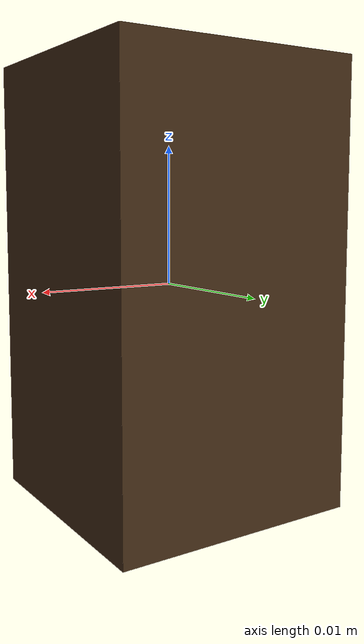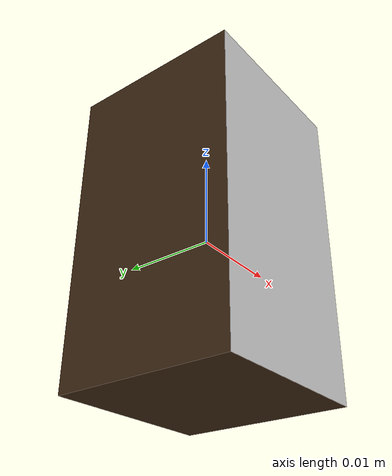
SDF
<?xml version="1.0" ?>
<sdf version="1.4">
  <model name="pawnB1">
    <static>0</static>
    <link name="link">

      <inertial>
        <mass>0.05</mass>
        <inertia>
          <ixx>0.000015</ixx>
          <ixy>0.0</ixy>
          <ixz>0.0</ixz>
          <iyy>0.000015</iyy>
          <iyz>0.0</iyz>
          <izz>0.0000108</izz>
        </inertia>
      </inertial>

      <collision name="colision">
        <pose>0 0 0 0 0 0</pose>
          <geometry>
            <box>
              <size>0.03 0.03 0.04</size>
            </box>
          </geometry>
          <surface>
            <friction>
              <ode>
                <mu>30.0</mu>
                <mu2>30.0</mu2>
                <fdir1>0 0 0</fdir1>
              </ode>
            </friction>
            <contact>
              <ode>
                <kp>1000.0</kp>
                <kd>100.0</kd>
                <min_depth>0.001</min_depth>
                <max_vel>0.001</max_vel>
              </ode>
            </contact>
          </surface>
      </collision>

      <visual name="visual1">
        <pose>0 0 0 0 0 0</pose>
        <geometry>
          <mesh>
             <uri>model://pawnB1/meshes/pawnB1.dae</uri>
    		<!-- the dae is a cube of 5x5x5 cm and the pawn is 3x3x4-->
	    <scale> 0.6 0.6 0.8 </scale>
          </mesh>
        </geometry>
      </visual>

      <velocity_decay>
        <linear>0.000000</linear>
        <angular>0.000000</angular>
      </velocity_decay>
      <self_collide>0</self_collide>
      <kinematic>0</kinematic>
      <gravity>1</gravity>
    </link>
  </model>
</sdf>
